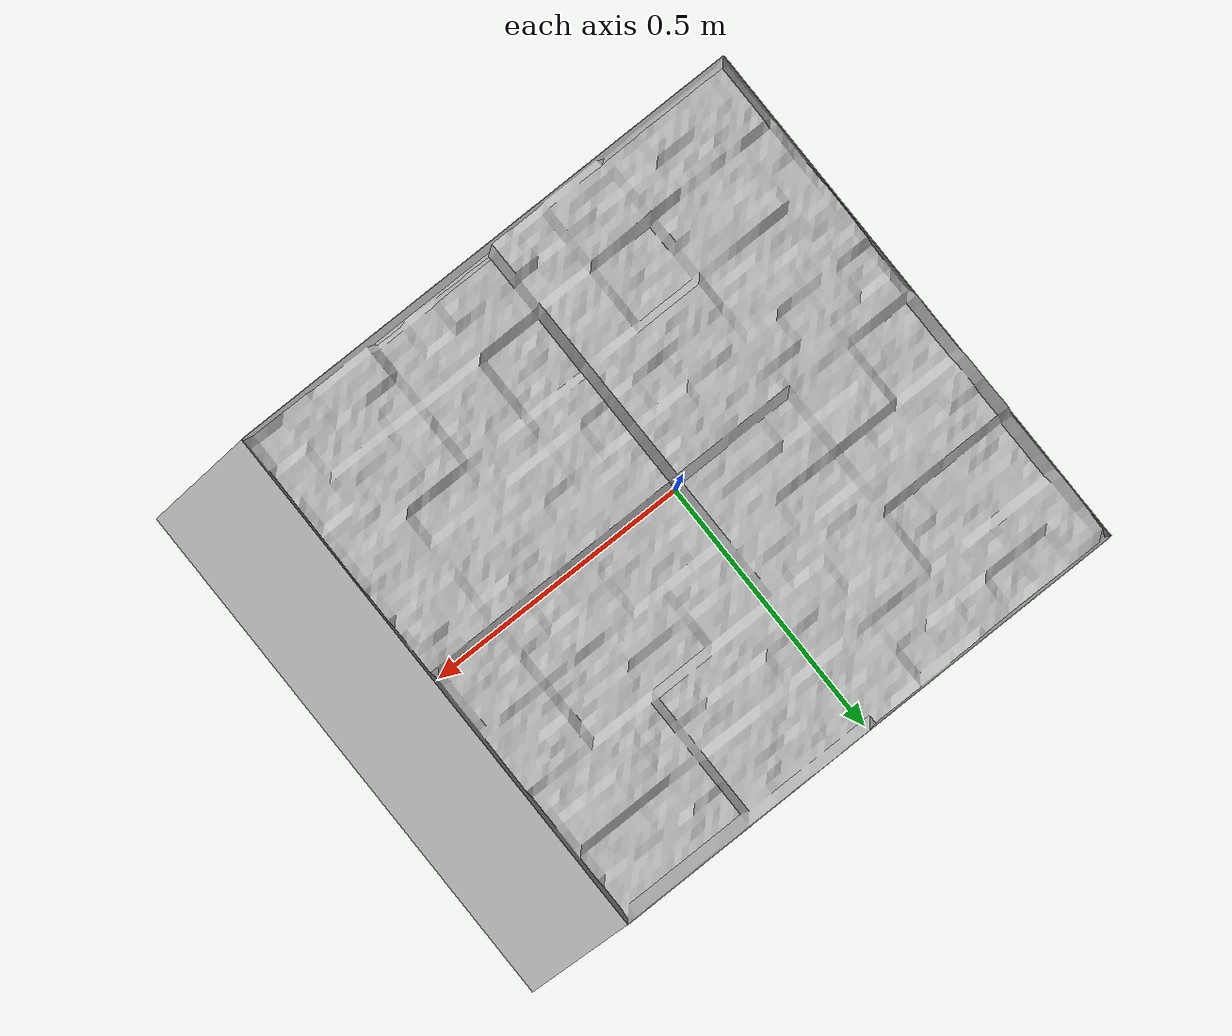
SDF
<?xml version="1.0" ?>
<sdf version="1.5">
  <model name="gravel">
    <static>true</static>
    <link name="link">
      <pose>0 0 0 0 0 0</pose>

      <collision name="collision">
        <geometry>
          <mesh>
            <uri>model://gravel/meshes/gravel.obj</uri>
          </mesh>
        </geometry>
        <surface>
          <contact>
            <poissons_ratio>0.25</poissons_ratio>
            <elastic_modulus>100000000</elastic_modulus>
          </contact>
          <bounce>
            <restitution_coefficient>0.45</restitution_coefficient>
          </bounce>
          <friction>
            <ode>
              <mu>0.55</mu>
              <mu2>0.55</mu2>
            </ode>
            <ode/>
            <torsional>
              <ode/>
            </torsional>
          </friction>
        </surface>
      </collision>

      <inertial>
        <pose>0 0 0 0 0 0</pose>
        <mass>1</mass>
        <inertia>
          <ixx>1</ixx>
          <ixy>0</ixy>
          <ixz>0</ixz>
          <iyy>1</iyy>
          <iyz>0</iyz>
          <izz>1</izz>
        </inertia>
      </inertial>

      <visual name="visual_abcedf">
        <geometry>
          <mesh>
            <uri>model://gravel/meshes/gravel.obj</uri>
          </mesh>
        </geometry>
        <material>
          <script>
            <uri>model://gravel/materials/scripts</uri>
            <uri>model://gravel/materials/textures</uri>
            <name>gravel/Diffuse</name>
          </script>
        </material>
      </visual>
    </link>
  </model>
</sdf>
